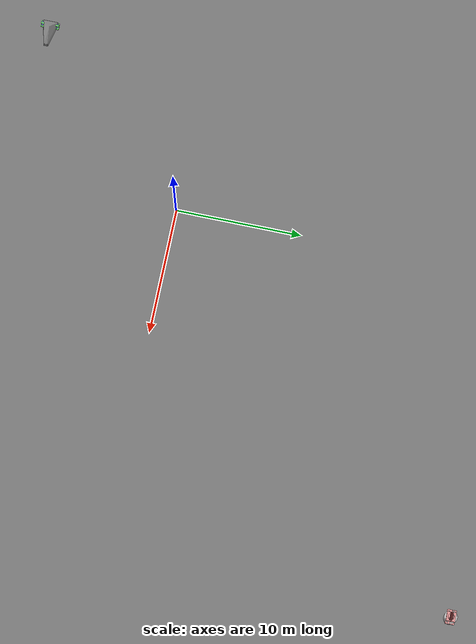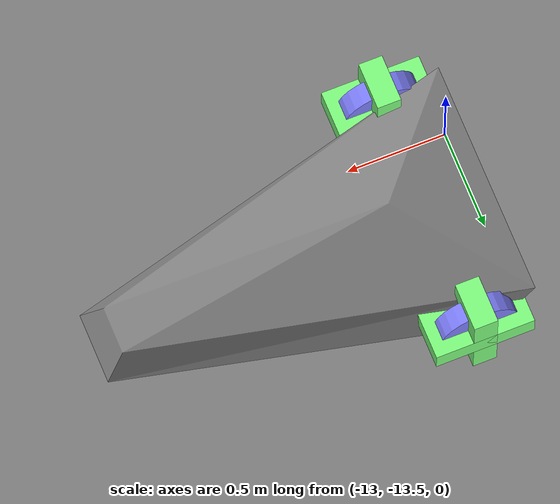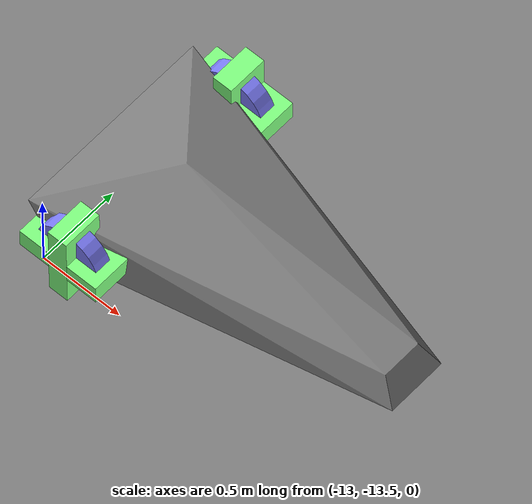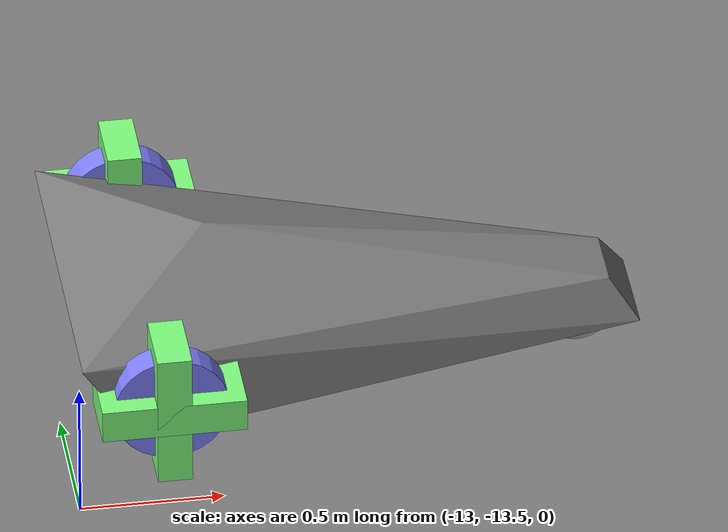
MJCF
<?xml version="1.0" ?>
<mujoco>
  <asset>
    <texture name="grid" type="2d" builtin="checker" width="512" height="512" rgb1=".1 .2 .3" rgb2=".2 .3 .4"/>
    <material name="grid" texture="grid" texrepeat="1 1" texuniform="true" reflectance=".2"/>
    <mesh name="chasis" scale=".1 .06 .015"
      vertex=" 9   2   0
              -10  10  10
               9  -2   0
               10  3  -10
               10 -3  -10
              -8   10 -10
              -10 -10  10
              -8  -10 -10
              -5   0   20"/>
  </asset>

  <default>
    <joint damping=".005" actuatorfrcrange="-1000 1000"/> <!-- Reduced damping, increased actuatorfrcrange -->
    <default class="wheel">
      <geom type="cylinder" size=".2 .05" rgba=".5 .5 1 1" friction="0.01"/> <!-- Adjusted wheel size and friction -->
    </default>
    <default class="decor">
      <site type="box" rgba=".5 1 .5 1"/>
    </default>
  </default>

  <worldbody>
    <!-- Define the floor -->
    <body name="floor" pos="10 10 0">
        <geom name="floor_geom" type="plane" size="50 50 1" rgba="0.5 0.5 0.5 1"/>
    </body>

    <!-- Define the agent -->
    <body name="car" pos="-12 -13 0.5">
      <freejoint/>
      <light name="top light" pos="0 0 2" mode="trackcom" diffuse=".4 .4 .4"/>
      <geom name="chasis" type="mesh" mesh="chasis"/>
      <geom name="front wheel" pos=".8 0 -.15" type="sphere" size=".15" condim="1" priority="1"/>
      <light name="front light" pos="1 0 .2" dir="2 0 -1" diffuse="1 1 1"/>
      <body name="left wheel" pos="-.7 .6 0" zaxis="0 1 0">
        <joint name="left"/>
        <geom class="wheel"/>
        <site class="decor" size=".06 .25 .12"/>
        <site class="decor" size=".25 .06 .12"/>
      </body>
      <body name="right wheel" pos="-.7 -.6 0" zaxis="0 1 0">
        <joint name="right"/>
        <geom class="wheel"/>
        <site class="decor" size=".06 .25 .12"/>
        <site class="decor" size=".25 .06 .12"/>
      </body>
    </body>

    <!-- Define the destination -->
    <body name="destination" pos="27 27 0.5">
      <!-- Base of the robot -->
      <geom name="destination_base" type="cylinder" size="0.5 0.5" pos="0 0 0.3" rgba="0.8 0.8 0.8 1"/>

      <!-- Body of the robot -->
      <geom name="destination_body" type="box" size="0.35 0.35 0.5" pos="0 0 0.65" rgba="0.9 0.6 0.6 1"/>

      <!-- Head of the robot -->
      <geom name="destination_head" type="sphere" size="0.25" pos="0 0 1.1" rgba="0.9 0.6 0.6 1"/>

      <!-- Eyes of the robot -->
      <geom name="destination_left_eye" type="sphere" size="0.05" pos="-0.1 0.1 1.2" rgba="0.1 0.1 0.1 1"/>
      <geom name="destination_right_eye" type="sphere" size="0.05" pos="0.1 0.1 1.2" rgba="0.1 0.1 0.1 1"/>

      <!-- Eyebrows -->
      <geom name="destination_left_eyebrow" type="box" size="0.07 0.02 0.01" pos="-0.1 0.13 1.25" rgba="0.2 0.1 0.1 1"/>
      <geom name="destination_right_eyebrow" type="box" size="0.07 0.02 0.01" pos="0.1 0.13 1.25" rgba="0.2 0.1 0.1 1"/>

      <!-- Mouth -->
      <geom name="destination_mouth" type="box" size="0.1 0.02 0.01" pos="0 0.1 1.05" rgba="0.2 0.1 0.1 1"/>

      <!-- Hair (simple box as a placeholder for hair) -->
      <geom name="destination_hair" type="box" size="0.3 0.1 0.1" pos="0 0 1.3" rgba="0.3 0.1 0.1 1"/>

      <!-- Left arm -->
      <geom name="destination_left_arm" type="box" size="0.1 0.35 0.1" pos="-0.45 0 0.7" rgba="0.9 0.6 0.6 1"/>

      <!-- Right arm -->
      <geom name="destination_right_arm" type="box" size="0.1 0.35 0.1" pos="0.45 0 0.7" rgba="0.9 0.6 0.6 1"/>

      <!-- Left hand -->
      <geom name="destination_left_hand" type="box" size="0.05 0.05 0.02" pos="-0.45 0 0.35" rgba="0.9 0.6 0.6 1"/>

      <!-- Right hand -->
      <geom name="destination_right_hand" type="box" size="0.05 0.05 0.02" pos="0.45 0 0.35" rgba="0.9 0.6 0.6 1"/>

      <!-- Left leg -->
      <geom name="destination_left_leg" type="box" size="0.1 0.1 0.4" pos="-0.2 0 -0.4" rgba="0.9 0.6 0.6 1"/>

      <!-- Right leg -->
      <geom name="destination_right_leg" type="box" size="0.1 0.1 0.4" pos="0.2 0 -0.4" rgba="0.9 0.6 0.6 1"/>

      <!-- Left foot -->
      <geom name="destination_left_foot" type="box" size="0.1 0.05 0.02" pos="-0.2 0 -0.55" rgba="0.9 0.6 0.6 1"/>

      <!-- Right foot -->
      <geom name="destination_right_foot" type="box" size="0.1 0.05 0.02" pos="0.2 0 -0.55" rgba="0.9 0.6 0.6 1"/>

      <!-- Additional features -->
      <!-- Nose -->
      <geom name="destination_nose" type="sphere" size="0.05" pos="0 0.1 1.1" rgba="0.9 0.6 0.6 1"/>

      <!-- Decorative elements -->
      <geom name="destination_decoration" type="box" size="0.05 0.05 0.02" pos="0 0.15 1.2" rgba="1 0.5 0.5 1"/>
    </body>
  </worldbody>

  <tendon>
      <fixed name="forward">
          <joint joint="left" coef="200.0"/>  <!-- Increased coefficient -->
          <joint joint="right" coef="200.0"/> <!-- Increased coefficient -->
      </fixed>
      <fixed name="turn">
          <joint joint="left" coef="-2.0"/> <!-- Increased coefficient -->
          <joint joint="right" coef="2.0"/>  <!-- Increased coefficient -->
      </fixed>
  </tendon>

  <actuator>
      <motor name="forward" tendon="forward" ctrlrange="-10 10"/> <!-- Increased from -2 2 to -10 10 -->
      <motor name="turn" tendon="turn" ctrlrange="-100 100"/> <!-- Increased from -2 2 to -10 10 -->
  </actuator>

  <sensor>
    <jointactuatorfrc name="right" joint="right"/>
    <jointactuatorfrc name="left" joint="left"/>
  </sensor>

</mujoco>
